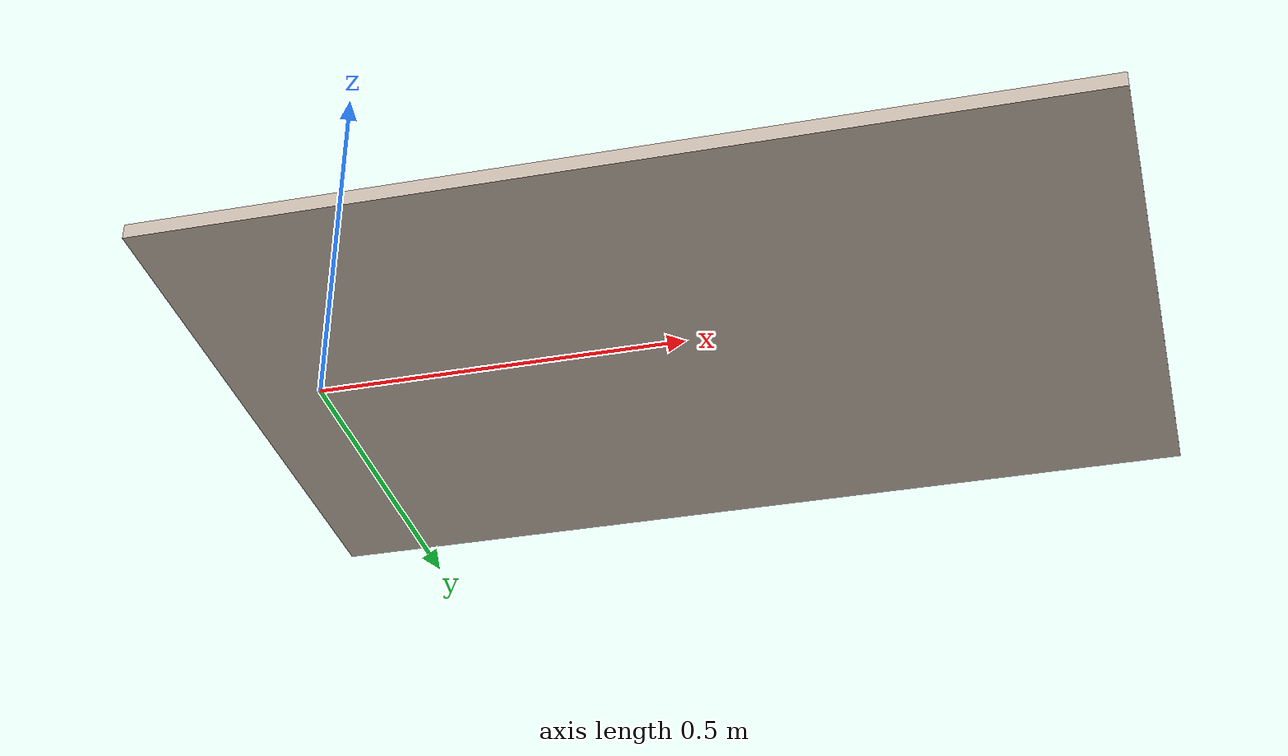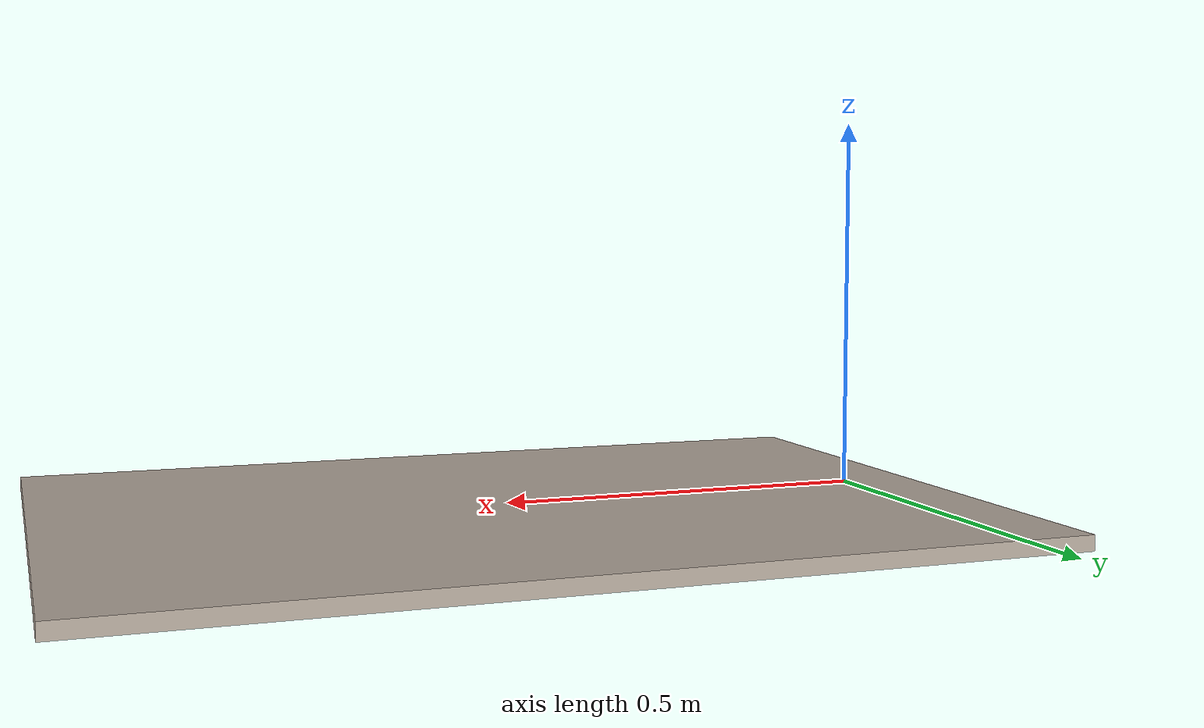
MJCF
<mujoco>
  <asset>
    <material name="table_top" rgba="0.75 0.7 0.65 1"/>
    <material name="table_leg" rgba="0.4 0.4 0.4 1"/>
  </asset>

  <worldbody>
    <!-- Table top: 1.2 m x 0.8 m, 0.02 m thick, surface at z=0. -->
    <body name="table" pos="0.5 0 -0.01">
      <geom name="table_top" type="box" size="0.6 0.4 0.01" pos="0 0 0" material="table_top" friction="0.8 0.02 0.01"/>
    </body>

    <!-- Overhead RGB camera for the simulated vision detector. -->
    <camera name="overhead_cam" mode="fixed" pos="0.5 0 1.2" xyaxes="1 0 0 0 -1 0" fovy="45"/>
  </worldbody>
</mujoco>
